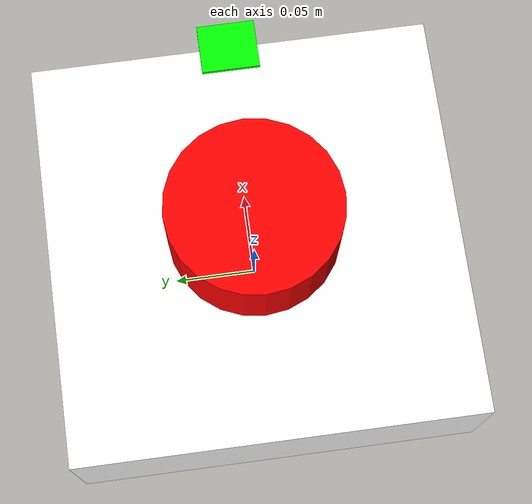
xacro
<?xml version="1.0"?>

<robot name="roboto" xmlns:xacro="http://ros.org/wiki/xacro" >

<xacro:include  filename="gazebo.xacro"/>

<link name="base_link"></link>

<joint name="base_footprint_joint" type="fixed">
    <parent link="base_link"/>
    <child link="base_footprint" />
    <origin rpy="0.0 0 0" xyz="0 0 0"/>
</joint>

<link name="base_footprint"></link>

<joint name="base_link_to_base" type="fixed">
    <parent link="base_link"/>
    <child link="body" />
    <origin rpy="0.0 0 0" xyz="0 0 0"/>
</joint>

<link name="body">

    <visual>
      <origin xyz="0 0 0.04015 " rpy="0 0 0"/>
      <geometry>
          <box size="0.24 0.24 0.0803" />
      </geometry>
      <material name="body_material">
                <color rgba="1 1 1 1"/>
      </material>
    </visual>

    <collision>
        <origin xyz="0 0 0.04015 " rpy="0 0 0"/>
        <geometry>
            <box size="0.24 0.24 0.0803" />
        </geometry>
        <selfCollide>false</selfCollide>
    </collision>

    <inertial>
        <origin rpy="0 0 0" xyz="0 0 -0.10"/>
        <mass value="2.4836529330259353721"/>
        <inertia ixx="0.0128" ixy="0" ixz="0" iyy="0.0128" iyz="0" izz="0.023"/>
    </inertial>

</link>

<joint name="body_to_front" type="fixed">
    <parent link="body"/>
    <child link="front"/>
    <origin rpy="0.0 0 0" xyz="0.12 0 0.0803"/>
  </joint>

<link name="front">
    <visual>
      <origin rpy="0 0 0" xyz="0.0 0 0 "/>
      <geometry>
        <box size="0.03 0.035 0.005"/>
      </geometry>
      <material name="front_material">
        <color rgba="0 1 0 1"/>
      </material>
    </visual>
    <collision>
      <origin rpy="0 0 0" xyz="0 0 0 "/>
      <geometry>
        <box size="0.03 0.035 0.005"/>
      </geometry>
    </collision>
</link>

<joint name="body_to_support" type="fixed">
    <parent link="body"/>
    <child link="support" />
    <origin  xyz="0 0 0.0803" rpy="0.0 0 0"/>
</joint>

<link name="support">

    <visual>
      <origin xyz="0 0 0.01 " rpy="0 0 0"/>
      <geometry>
          <box size="0.04 0.04 0.02" />
      </geometry>
      <material name="body_material">
                <color rgba="1 1 1 1"/>
      </material>
    </visual>

    <collision>
        <origin xyz="0 0 0 " rpy="0 0 0"/>
        <geometry>
            <box size="0.04 0.04 0.02" />
        </geometry>
    </collision>

</link>

<joint name="support_to_lidar" type="fixed">
    <parent link="support"/>
    <child link="lidar" />
    <origin  xyz="0 0 0.02" rpy="0 0 0"/>
</joint>

 <link name="lidar">
        <visual>
            <origin xyz="0 0 0.015" rpy="0 0 0" />
            <geometry>
                <cylinder length="0.05" radius="0.05" />
            </geometry>
            <material name="lidar_material">
                <color rgba="1 0 0 1.0" />
            </material>
        </visual>

        <collision>
            <origin xyz="0 0 0.015" rpy="0 0 0" />
            <geometry>
                <cylinder length="0.05" radius="0.05" />
            </geometry>
        </collision>

        <inertial>
            <mass value="0.001" />
            <inertia ixx="0.005" ixy="0.0" ixz="0.0" iyy="0.005" iyz="0.0" izz="0.005" />
        </inertial>
</link>

<xacro:include  filename="omni_robot.urdf.xacro"/>

<xacro:include  filename="ros2_control.xacro"/>

</robot>

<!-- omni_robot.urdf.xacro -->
<robot  xmlns:xacro="http://ros.org/wiki/xacro">

  <xacro:include filename="$(find roboto)/robot_description/sim_bot/omni_wheel/omni_wheel.urdf.xacro"/>
  <xacro:include filename="$(find roboto)/robot_description/sim_bot/roller/roller.urdf.xacro"/>

  <!-- 1st wheel -->

  <xacro:wheel_v0 prefix="1" parent="body">
	<origin xyz="0.12 -0.12 0.015" rpy="0 0 ${-3*pi/4}"/>
	<axis xyz="0 1 0"/>
  </xacro:wheel_v0>

  <xacro:roller_v0 prefix="r1_F" parent="wheel_1_link">
	<origin xyz="0 -0.006 0.024063" rpy="0 0 1.570796"/>
	<axis xyz="0 1 0"/>
  </xacro:roller_v0>
  <xacro:roller_v0 prefix="r2_F" parent="wheel_1_link">
	<origin xyz="-0.0228853 -0.006 0.0074359" rpy="-1.256637 0 1.570796"/>
	<axis xyz="0 1 0"/>
  </xacro:roller_v0>
  <xacro:roller_v0 prefix="r3_F" parent="wheel_1_link">
	<origin xyz="-0.0141439 -0.006 -0.0194674" rpy="-2.512274 0 1.570796"/>
	<axis xyz="0 1 0"/>
  </xacro:roller_v0>
  <xacro:roller_v0 prefix="r4_F" parent="wheel_1_link">
	<origin xyz="0.0141439 -0.006 -0.0194674" rpy="-3.769911 0 1.570796"/>
	<axis xyz="0 1 0"/>
  </xacro:roller_v0>
  <xacro:roller_v0 prefix="r5_F" parent="wheel_1_link">
	<origin xyz="0.0228853 -0.006 0.0074359" rpy="-5.026548 0 1.570796"/>
	<axis xyz="0 1 0"/>
  </xacro:roller_v0>

  <xacro:roller_v0 prefix="r6_F" parent="wheel_1_link">
	<origin xyz="0 0.006 -0.024063" rpy="0 0 1.570796"/>
	<axis xyz="0 1 0"/>
  </xacro:roller_v0>
  <xacro:roller_v0 prefix="r7_F" parent="wheel_1_link">
	<origin xyz="0.0228853 0.006 -0.0074359" rpy="-1.256637 0 1.570796"/>
	<axis xyz="0 1 0"/>
  </xacro:roller_v0>
  <xacro:roller_v0 prefix="r8_F" parent="wheel_1_link">
	<origin xyz="0.0141439 0.006 0.0194674" rpy="-2.512274 0 1.570796"/>
	<axis xyz="0 1 0"/>
  </xacro:roller_v0>
  <xacro:roller_v0 prefix="r9_F" parent="wheel_1_link">
	<origin xyz="-0.0141439 0.006 0.0194674" rpy="-3.769911 0 1.570796"/>
	<axis xyz="0 1 0"/>
  </xacro:roller_v0>
  <xacro:roller_v0 prefix="r10_F" parent="wheel_1_link">
	<origin xyz="-0.0228853 0.006 -0.0074359" rpy="-5.026548 0 1.570796"/>
	<axis xyz="0 1 0"/>
  </xacro:roller_v0>

  <!-- 2nd wheel -->
  <xacro:wheel_v0 prefix="2" parent="body">
	<origin xyz="0.12 0.12 0.015" rpy="0 0 ${-pi/4}"/>
	<axis xyz="0 1 0"/>
  </xacro:wheel_v0>

  <xacro:roller_v0 prefix="r1_S" parent="wheel_2_link">
	<origin xyz="0 -0.006 0.024063" rpy="0 0 1.570796"/>
	<axis xyz="0 1 0"/>
  </xacro:roller_v0>
  <xacro:roller_v0 prefix="r2_S" parent="wheel_2_link">
	<origin xyz="-0.0228853 -0.006 0.0074359" rpy="-1.256637 0 1.570796"/>
	<axis xyz="0 1 0"/>
  </xacro:roller_v0>
  <xacro:roller_v0 prefix="r3_S" parent="wheel_2_link">
	<origin xyz="-0.0141439 -0.006 -0.0194674" rpy="-2.512274 0 1.570796"/>
	<axis xyz="0 1 0"/>
  </xacro:roller_v0>
  <xacro:roller_v0 prefix="r4_S" parent="wheel_2_link">
	<origin xyz="0.0141439 -0.006 -0.0194674" rpy="-3.769911 0 1.570796"/>
	<axis xyz="0 1 0"/>
  </xacro:roller_v0>
  <xacro:roller_v0 prefix="r5_S" parent="wheel_2_link">
	<origin xyz="0.0228853 -0.006 0.0074359" rpy="-5.026548 0 1.570796"/>
	<axis xyz="0 1 0"/>
  </xacro:roller_v0>

  <xacro:roller_v0 prefix="r6_S" parent="wheel_2_link">
	<origin xyz="0 0.006 -0.024063" rpy="0 0 1.570796"/>
	<axis xyz="0 1 0"/>
  </xacro:roller_v0>
  <xacro:roller_v0 prefix="r7_S" parent="wheel_2_link">
	<origin xyz="0.0228853 0.006 -0.0074359" rpy="-1.256637 0 1.570796"/>
	<axis xyz="0 1 0"/>
  </xacro:roller_v0>
  <xacro:roller_v0 prefix="r8_S" parent="wheel_2_link">
	<origin xyz="0.0141439 0.006 0.0194674" rpy="-2.512274 0 1.570796"/>
	<axis xyz="0 1 0"/>
  </xacro:roller_v0>
  <xacro:roller_v0 prefix="r9_S" parent="wheel_2_link">
	<origin xyz="-0.0141439 0.006 0.0194674" rpy="-3.769911 0 1.570796"/>
	<axis xyz="0 1 0"/>
  </xacro:roller_v0>
  <xacro:roller_v0 prefix="r10_S" parent="wheel_2_link">
	<origin xyz="-0.0228853 0.006 -0.0074359" rpy="-5.026548 0 1.570796"/>
	<axis xyz="0 1 0"/>
  </xacro:roller_v0>

  <!-- 3rd wheel -->
  <xacro:wheel_v0 prefix="3" parent="body">
	<origin xyz="-0.12 0.12 0.015" rpy="0 0 ${pi/4}"/>
	<axis xyz="0 1 0"/>
  </xacro:wheel_v0>

  <xacro:roller_v0 prefix="r1_T" parent="wheel_3_link">
	<origin xyz="0 -0.006 0.024063" rpy="0 0 1.570796"/>
	<axis xyz="0 1 0"/>
  </xacro:roller_v0>
  <xacro:roller_v0 prefix="r2_T" parent="wheel_3_link">
	<origin xyz="-0.0228853 -0.006 0.0074359" rpy="-1.256637 0 1.570796"/>
	<axis xyz="0 1 0"/>
  </xacro:roller_v0>
  <xacro:roller_v0 prefix="r3_T" parent="wheel_3_link">
	<origin xyz="-0.0141439 -0.006 -0.0194674" rpy="-2.512274 0 1.570796"/>
	<axis xyz="0 1 0"/>
  </xacro:roller_v0>
  <xacro:roller_v0 prefix="r4_T" parent="wheel_3_link">
	<origin xyz="0.0141439 -0.006 -0.0194674" rpy="-3.769911 0 1.570796"/>
	<axis xyz="0 1 0"/>
  </xacro:roller_v0>
  <xacro:roller_v0 prefix="r5_T" parent="wheel_3_link">
	<origin xyz="0.0228853 -0.006 0.0074359" rpy="-5.026548 0 1.570796"/>
	<axis xyz="0 1 0"/>
  </xacro:roller_v0>

  <xacro:roller_v0 prefix="r6_T" parent="wheel_3_link">
	<origin xyz="0 0.006 -0.024063" rpy="0 0 1.570796"/>
	<axis xyz="0 1 0"/>
  </xacro:roller_v0>
  <xacro:roller_v0 prefix="r7_T" parent="wheel_3_link">
	<origin xyz="0.0228853 0.006 -0.0074359" rpy="-1.256637 0 1.570796"/>
	<axis xyz="0 1 0"/>
  </xacro:roller_v0>
  <xacro:roller_v0 prefix="r8_T" parent="wheel_3_link">
	<origin xyz="0.0141439 0.006 0.0194674" rpy="-2.512274 0 1.570796"/>
	<axis xyz="0 1 0"/>
  </xacro:roller_v0>
  <xacro:roller_v0 prefix="r9_T" parent="wheel_3_link">
	<origin xyz="-0.0141439 0.006 0.0194674" rpy="-3.769911 0 1.570796"/>
	<axis xyz="0 1 0"/>
  </xacro:roller_v0>
  <xacro:roller_v0 prefix="r10_T" parent="wheel_3_link">
	<origin xyz="-0.0228853 0.006 -0.0074359" rpy="-5.026548 0 1.570796"/>
	<axis xyz="0 1 0"/>
  </xacro:roller_v0>

<!-- 4th wheel -->
  <xacro:wheel_v0 prefix="4" parent="body">
	<origin xyz="-0.12 -0.12 0.015" rpy="0 0 ${3*pi/4}"/>
	<axis xyz="0 1 0"/>
  </xacro:wheel_v0>

  <xacro:roller_v0 prefix="r1_R" parent="wheel_4_link">
	<origin xyz="0 -0.006 0.024063" rpy="0 0 1.570796"/>
	<axis xyz="0 1 0"/>
  </xacro:roller_v0>
  <xacro:roller_v0 prefix="r2_R" parent="wheel_4_link">
	<origin xyz="-0.0228853 -0.006 0.0074359" rpy="-1.256637 0 1.570796"/>
	<axis xyz="0 1 0"/>
  </xacro:roller_v0>
  <xacro:roller_v0 prefix="r3_R" parent="wheel_4_link">
	<origin xyz="-0.0141439 -0.006 -0.0194674" rpy="-2.512274 0 1.570796"/>
	<axis xyz="0 1 0"/>
  </xacro:roller_v0>
  <xacro:roller_v0 prefix="r4_R" parent="wheel_4_link">
	<origin xyz="0.0141439 -0.006 -0.0194674" rpy="-3.769911 0 1.570796"/>
	<axis xyz="0 1 0"/>
  </xacro:roller_v0>
  <xacro:roller_v0 prefix="r5_R" parent="wheel_4_link">
	<origin xyz="0.0228853 -0.006 0.0074359" rpy="-5.026548 0 1.570796"/>
	<axis xyz="0 1 0"/>
  </xacro:roller_v0>

  <xacro:roller_v0 prefix="r6_R" parent="wheel_4_link">
	<origin xyz="0 0.006 -0.024063" rpy="0 0 1.570796"/>
	<axis xyz="0 1 0"/>
  </xacro:roller_v0>
  <xacro:roller_v0 prefix="r7_R" parent="wheel_4_link">
	<origin xyz="0.0228853 0.006 -0.0074359" rpy="-1.256637 0 1.570796"/>
	<axis xyz="0 1 0"/>
  </xacro:roller_v0>
  <xacro:roller_v0 prefix="r8_R" parent="wheel_4_link">
	<origin xyz="0.0141439 0.006 0.0194674" rpy="-2.512274 0 1.570796"/>
	<axis xyz="0 1 0"/>
  </xacro:roller_v0>
  <xacro:roller_v0 prefix="r9_R" parent="wheel_4_link">
	<origin xyz="-0.0141439 0.006 0.0194674" rpy="-3.769911 0 1.570796"/>
	<axis xyz="0 1 0"/>
  </xacro:roller_v0>
  <xacro:roller_v0 prefix="r10_R" parent="wheel_4_link">
	<origin xyz="-0.0228853 0.006 -0.0074359" rpy="-5.026548 0 1.570796"/>
	<axis xyz="0 1 0"/>
  </xacro:roller_v0>

  <xacro:wheel_gazebo_v0 prefix="1"/>
  <xacro:wheel_gazebo_v0 prefix="2"/>
  <xacro:wheel_gazebo_v0 prefix="3"/>
  <xacro:wheel_gazebo_v0 prefix="4"/>

</robot>

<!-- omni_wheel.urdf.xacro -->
<robot xmlns:xacro="http://ros.org/wiki/xacro">

  <xacro:include filename="$(find roboto)/robot_description/sim_bot/omni_wheel/omni_wheel.gazebo.xacro"/>

  <xacro:macro name="wheel_v0" params="prefix parent *joint_origin *joint_axis">

  <joint name="wheel_${prefix}_joint" type="continuous">
	  <xacro:insert_block name="joint_origin"/>
	  <parent link="${parent}"/>

	  <child link="wheel_${prefix}_link"/>
          <limit effort="100" velocity="100"/>
          <dynamics damping="0.0" friction="0.1"/>

	  <xacro:insert_block name="joint_axis"/>
	</joint>

	<link name="wheel_${prefix}_link">

	  <collision>
		<geometry>
		  <mesh filename="package://roboto/robot_description/meshes/STL/omni_wheel/omni_wheel.stl"/>
		</geometry>
	  </collision>
	  <inertial>
		<origin xyz="0.0 -0.011 -0.0"/>
		<mass value="0.25"/>
		<inertia ixx="0.00031" ixy="0" ixz="0" iyy="0.0005" iyz="0" izz="0.00031"/>
	  </inertial>
          <surface>
            <friction>
              <ode>
                <mu1>1.2</mu1>
                <mu2>1.2</mu2>

              </ode>
            </friction>

          </surface>
	</link>
  </xacro:macro>

</robot>

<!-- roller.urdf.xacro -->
<robot xmlns:xacro="http://ros.org/wiki/xacro">

  <xacro:include filename="$(find roboto)/robot_description/sim_bot/roller/roller.gazebo.xacro"/>

  <xacro:macro name="roller_v0" params="prefix parent *joint_origin *joint_axis">
	<joint name="${prefix}_roller_joint" type="continuous">
	  <xacro:insert_block name="joint_origin"/>
	  <parent link="${parent}"/>
	  <child link="${prefix}_roller_link"/>
	  <xacro:insert_block name="joint_axis"/>
	  <dynamics damping="0.0" friction="0.1"/>

	</joint>

	<link name="${prefix}_roller_link">

	  <collision>
		<geometry>
		  <mesh filename="package://roboto/robot_description/meshes/STL/roller/roller.stl"/>
		</geometry>
	  </collision>
	  <inertial>
		<origin xyz="0.0 0.0 0.0"/>
		<mass value="0.0009"/>
		<inertia ixx="0.000001257" ixy="0" ixz="0" iyy="0.000000342" iyz="0" izz="0.000001257"/>
	  </inertial>
          <surface>
            <friction>
              <ode>
                <mu1>1.2</mu1>
                <mu2>1.2</mu2>

              </ode>
            </friction>

          </surface>
	</link>
  </xacro:macro>

</robot>
